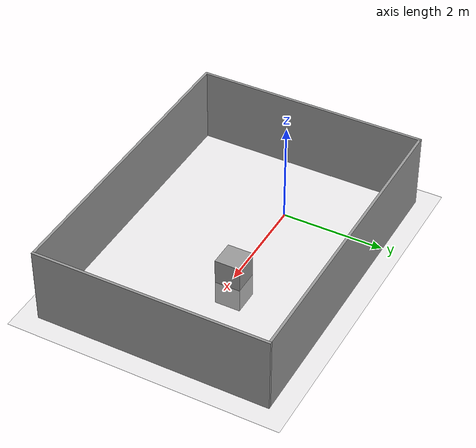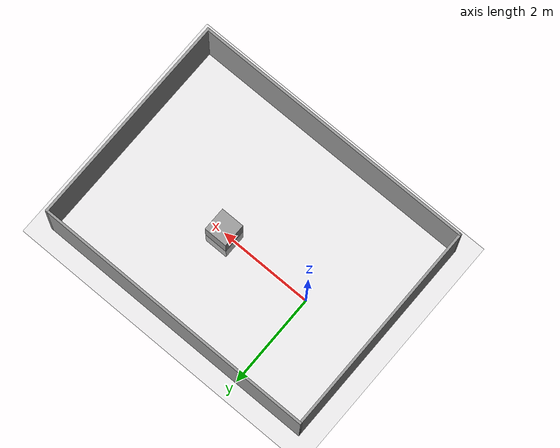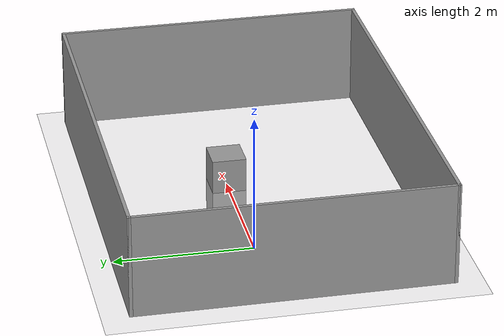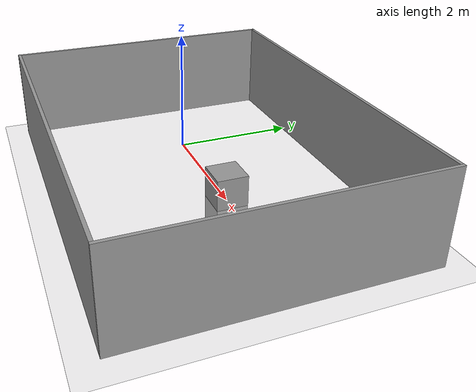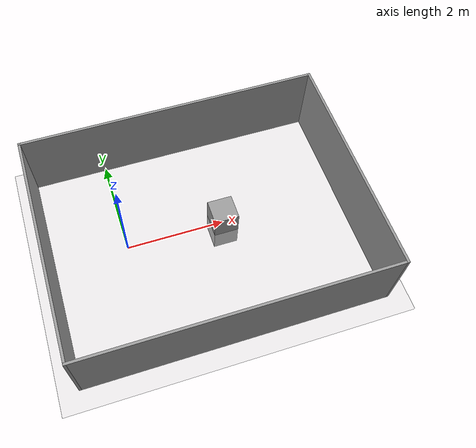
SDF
<?xml version="1.0" ?>
<sdf version="1.5">
  <world name="default">
    <!-- A global light source -->
    <include>
      <uri>model://sun</uri>
    </include>
    <!-- A ground plane -->
    <include>
      <uri>model://ground_plane</uri>
    </include>
    <!-- Big Arena -->
    <include>
      <uri>model://big_arena</uri>
      <pose>1.5 -0.25 0 0 0 1.5707</pose>
    </include>
    <include>
      <uri>model://obstacle</uri>
      <pose>2 0 0 0 0 0</pose>
    </include>
  </world>
</sdf>

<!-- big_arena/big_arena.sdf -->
<sdf version='1.7'>
  <model name='big_arena'>
    <pose>0.25 0 0 0 -0 0</pose>
    <link name='Wall_0'>
      <collision name='Wall_0_Collision'>
        <geometry>
          <box>
            <size>6 0.05 1.5</size>
          </box>
        </geometry>
        <pose>0 0 0.75 0 -0 0</pose>
      </collision>
      <visual name='Wall_0_Visual'>
        <pose>0 0 0.75 0 -0 0</pose>
        <geometry>
          <box>
            <size>6 0.05 1.5</size>
          </box>
        </geometry>
        <material>
          <script>
            <uri>file://media/materials/scripts/gazebo.material</uri>
            <name>Gazebo/Grey</name>
          </script>
          <ambient>1 1 1 1</ambient>
        </material>
        <meta>
          <layer>0</layer>
        </meta>
      </visual>
      <pose>-2.25 0.025 0 0 -0 -1.5708</pose>
    </link>
    <link name='Wall_4'>
      <collision name='Wall_4_Collision'>
        <geometry>
          <box>
            <size>6 0.05 1.5</size>
          </box>
        </geometry>
        <pose>0 0 0.75 0 -0 0</pose>
      </collision>
      <visual name='Wall_4_Visual'>
        <pose>0 0 0.75 0 -0 0</pose>
        <geometry>
          <box>
            <size>6 0.05 1.5</size>
          </box>
        </geometry>
        <material>
          <script>
            <uri>file://media/materials/scripts/gazebo.material</uri>
            <name>Gazebo/Grey</name>
          </script>
          <ambient>1 1 1 1</ambient>
        </material>
        <meta>
          <layer>0</layer>
        </meta>
      </visual>
      <pose>2.25 0.025 0 0 -0 -1.5708</pose>
    </link>
    <link name='Wall_6'>
      <collision name='Wall_6_Collision'>
        <geometry>
          <box>
            <size>4.55 0.05 1.5</size>
          </box>
        </geometry>
        <pose>0 0 0.75 0 -0 0</pose>
      </collision>
      <visual name='Wall_6_Visual'>
        <pose>0 0 0.75 0 -0 0</pose>
        <geometry>
          <box>
            <size>4.55 0.05 1.5</size>
          </box>
        </geometry>
        <material>
          <script>
            <uri>file://media/materials/scripts/gazebo.material</uri>
            <name>Gazebo/Grey</name>
          </script>
          <ambient>1 1 1 1</ambient>
        </material>
        <meta>
          <layer>0</layer>
        </meta>
      </visual>
      <pose>0 -3 0 0 -0 0</pose>
    </link>
    <link name='Wall_8'>
      <collision name='Wall_8_Collision'>
        <geometry>
          <box>
            <size>4.55 0.05 1.5</size>
          </box>
        </geometry>
        <pose>0 0 0.75 0 -0 0</pose>
      </collision>
      <visual name='Wall_8_Visual'>
        <pose>0 0 0.75 0 -0 0</pose>
        <geometry>
          <box>
            <size>4.55 0.05 1.5</size>
          </box>
        </geometry>
        <material>
          <script>
            <uri>file://media/materials/scripts/gazebo.material</uri>
            <name>Gazebo/Grey</name>
          </script>
          <ambient>1 1 1 1</ambient>
        </material>
        <meta>
          <layer>0</layer>
        </meta>
      </visual>
      <pose>0 3 0 0 -0 0</pose>
    </link>
    <static>1</static>
  </model>
</sdf>

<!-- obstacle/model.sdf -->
<sdf version='1.7'>
  <model name='obstacle'>
    <link name='link_0'>
      <inertial>
        <mass>1</mass>
        <inertia>
          <ixx>0.166667</ixx>
          <ixy>0</ixy>
          <ixz>0</ixz>
          <iyy>0.166667</iyy>
          <iyz>0</iyz>
          <izz>0.166667</izz>
        </inertia>
        <pose>0 0 0 0 -0 0</pose>
      </inertial>
      <pose>0 0 0 0 -0 0</pose>
      <gravity>1</gravity>
      <self_collide>0</self_collide>
      <kinematic>0</kinematic>
      <enable_wind>0</enable_wind>
      <visual name='visual'>
        <pose>0 0 0 0 -0 0</pose>
        <geometry>
          <box>
            <size>0.5 0.5 1</size>
          </box>
        </geometry>
        <material>
          <lighting>1</lighting>
          <script>
            <uri>file://media/materials/scripts/gazebo.material</uri>
            <name>Gazebo/Grey</name>
          </script>
          <shader type='pixel'>
            <normal_map>__default__</normal_map>
          </shader>
          <ambient>0.3 0.3 0.3 1</ambient>
          <diffuse>0.7 0.7 0.7 1</diffuse>
          <specular>0.01 0.01 0.01 1</specular>
          <emissive>0 0 0 1</emissive>
        </material>
        <transparency>0</transparency>
        <cast_shadows>1</cast_shadows>
      </visual>
      <collision name='collision'>
        <laser_retro>0</laser_retro>
        <max_contacts>10</max_contacts>
        <pose>0 0 0 0 -0 0</pose>
        <geometry>
          <box>
            <size>0.5 0.5 1</size>
          </box>
        </geometry>
        <surface>
          <friction>
            <ode>
              <mu>1</mu>
              <mu2>1</mu2>
              <fdir1>0 0 0</fdir1>
              <slip1>0</slip1>
              <slip2>0</slip2>
            </ode>
            <torsional>
              <coefficient>1</coefficient>
              <patch_radius>0</patch_radius>
              <surface_radius>0</surface_radius>
              <use_patch_radius>1</use_patch_radius>
              <ode>
                <slip>0</slip>
              </ode>
            </torsional>
          </friction>
          <bounce>
            <restitution_coefficient>0</restitution_coefficient>
            <threshold>1e+06</threshold>
          </bounce>
          <contact>
            <collide_without_contact>0</collide_without_contact>
            <collide_without_contact_bitmask>1</collide_without_contact_bitmask>
            <collide_bitmask>1</collide_bitmask>
            <ode>
              <soft_cfm>0</soft_cfm>
              <soft_erp>0.2</soft_erp>
              <kp>1e+13</kp>
              <kd>1</kd>
              <max_vel>0.01</max_vel>
              <min_depth>0</min_depth>
            </ode>
            <bullet>
              <split_impulse>1</split_impulse>
              <split_impulse_penetration_threshold>-0.01</split_impulse_penetration_threshold>
              <soft_cfm>0</soft_cfm>
              <soft_erp>0.2</soft_erp>
              <kp>1e+13</kp>
              <kd>1</kd>
            </bullet>
          </contact>
        </surface>
      </collision>
    </link>
    <static>0</static>
    <allow_auto_disable>1</allow_auto_disable>
  </model>
</sdf>
